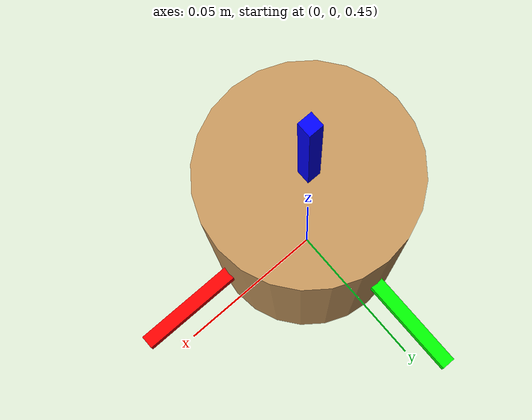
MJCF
<mujoco model="reorientation_cylinder_d60_h80">
  <asset>
    <material name="pine" rgba="0.76 0.58 0.36 1"/>
    <material name="red" rgba="1 0 0 1"/>
    <material name="green" rgba="0 1 0 1"/>
    <material name="blue" rgba="0 0 1 1"/>
  </asset>
  <option timestep="0.0025" gravity="0 0 0"/>

  <worldbody>
    <light pos="0 0 1"/>
    <body name="cylinder" pos="0 0 0.5">
      <freejoint/>
      <!-- Nominal design: radius 30 mm, half-height 40 mm. The 0.1131 kg mass
           assumes 500 kg/m^3 wood and must be replaced by the measured mass for
           hardware-correlated simulation. -->
      <geom name="cylinder" type="cylinder" size="0.03 0.04" mass="0.1131"
            material="pine" friction="0.05 0.0001 0.0001"/>

      <!-- Body-fixed frame visualization: +X red, +Y green, +Z blue. -->
      <geom name="axis_x" type="box" size="0.03 0.002 0.002" pos="0.03 0 0"
            material="red" contype="0" conaffinity="0" density="0"/>
      <geom name="axis_y" type="box" size="0.002 0.03 0.002" pos="0 0.03 0"
            material="green" contype="0" conaffinity="0" density="0"/>
      <geom name="axis_z" type="box" size="0.002 0.002 0.04" pos="0 0 0.04"
            material="blue" contype="0" conaffinity="0" density="0"/>
    </body>
  </worldbody>

  <sensor>
    <framepos name="cylinder_position" objtype="body" objname="cylinder"/>
    <framequat name="cylinder_orientation" objtype="body" objname="cylinder"/>
    <framelinvel name="cylinder_linear_velocity" objtype="body" objname="cylinder"/>
    <frameangvel name="cylinder_angular_velocity" objtype="body" objname="cylinder"/>
  </sensor>
</mujoco>
